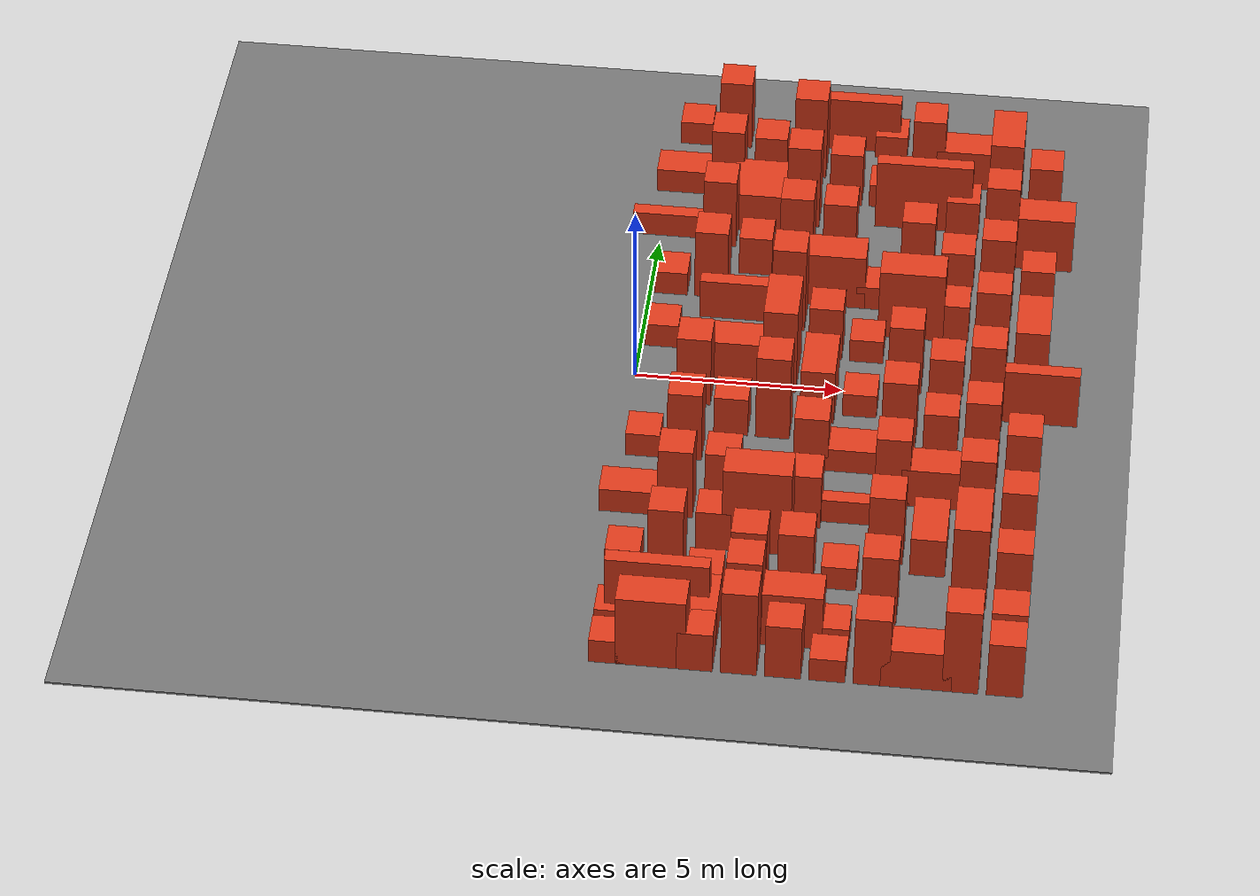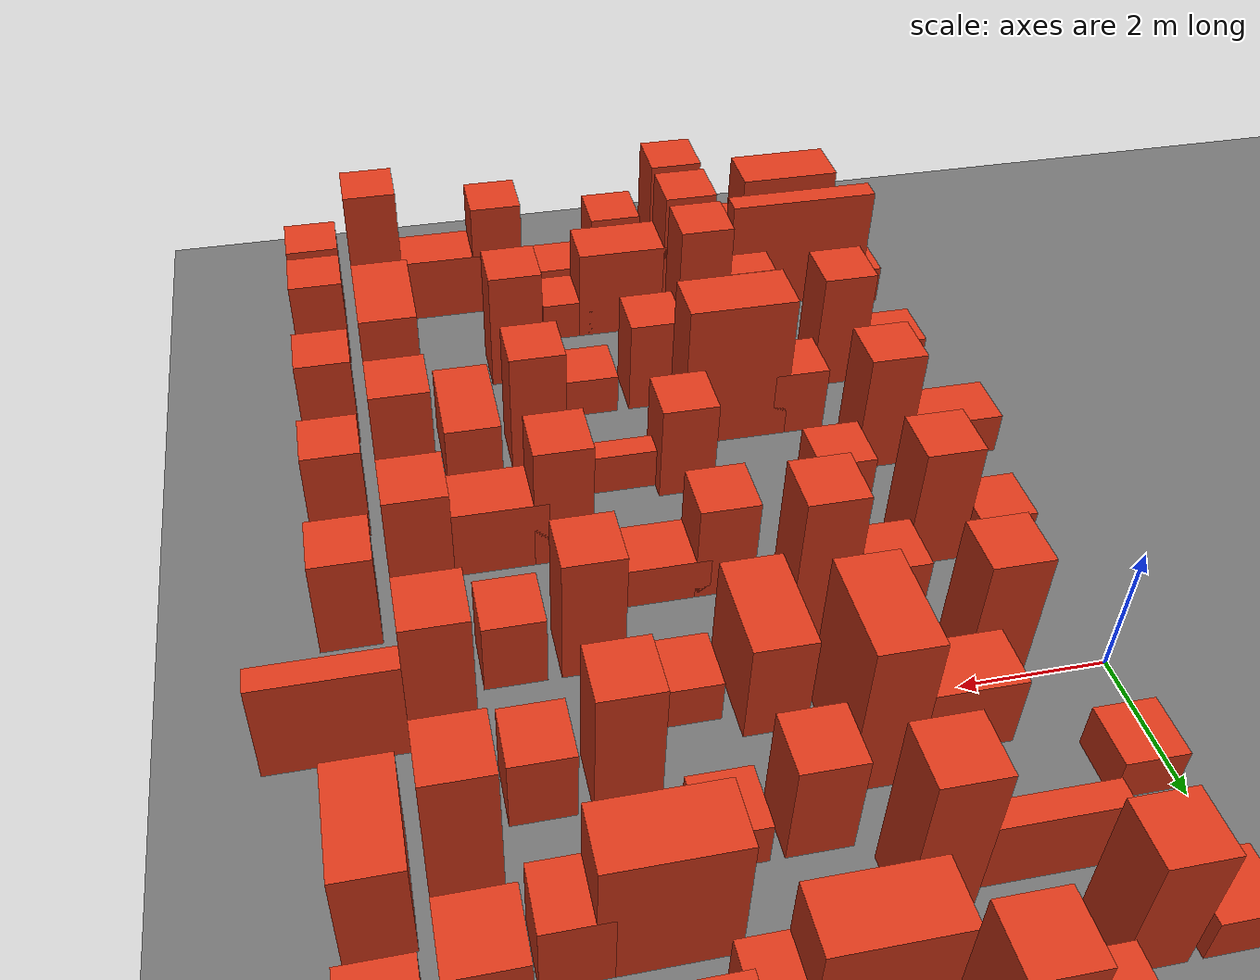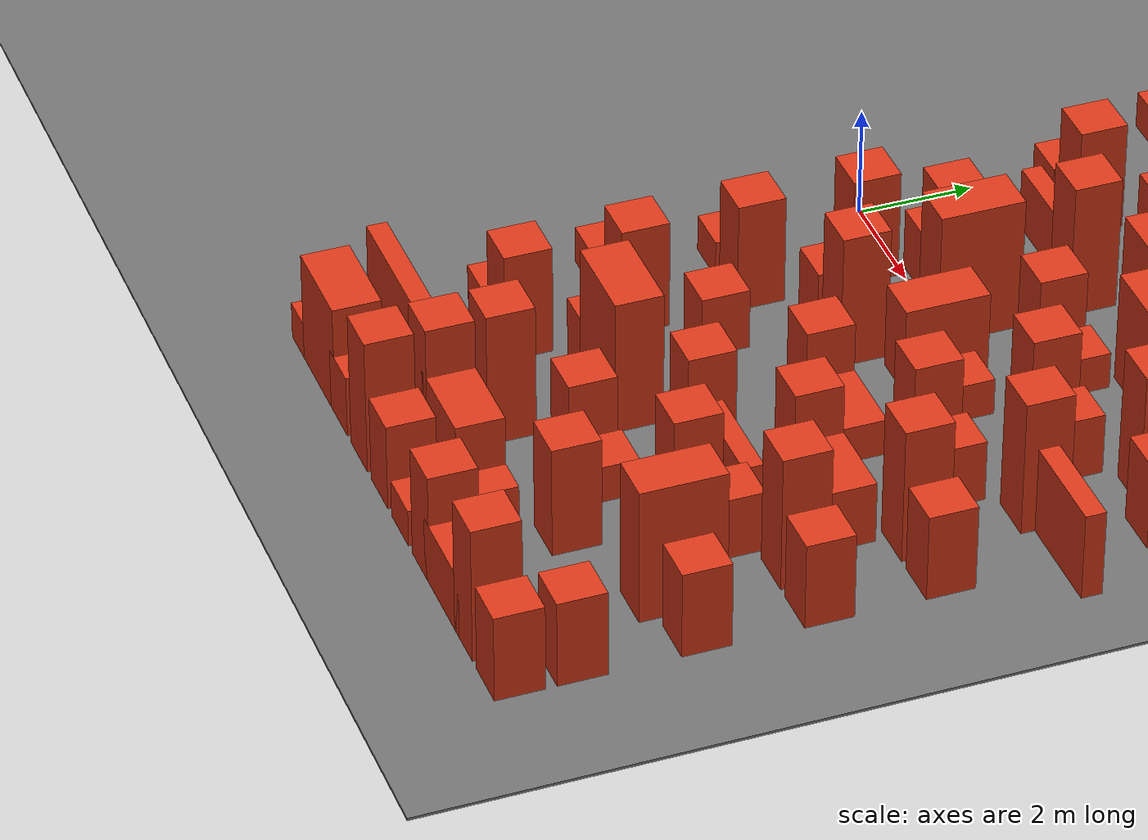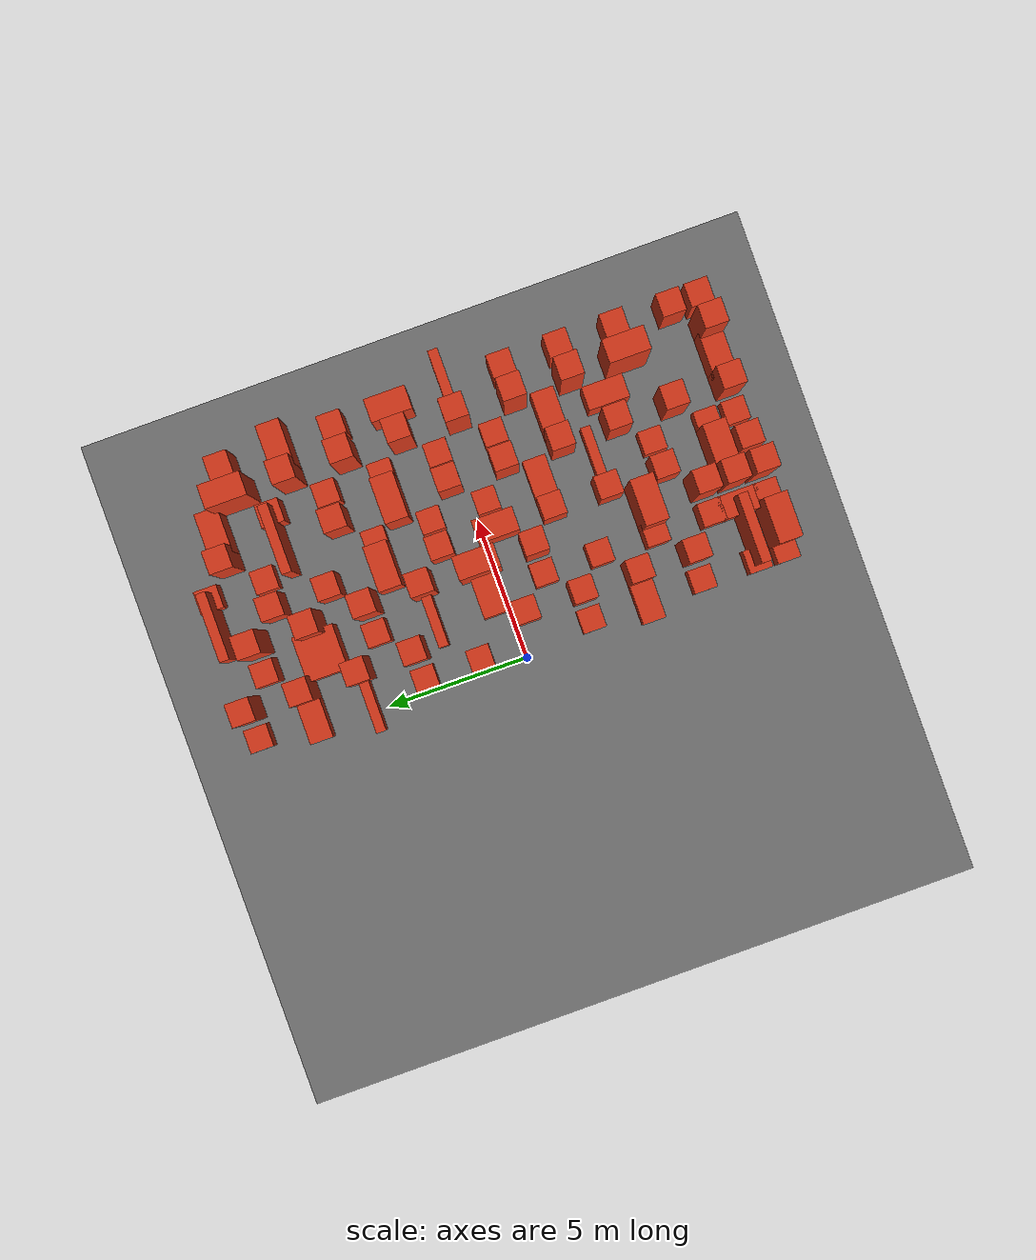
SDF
<sdf version="1.6">
 <world name="dense50_ground_footprint">
  <include><uri>model://sun</uri></include>
  <model name="ground_plane">
   <static>true</static>
   <link name="link">
    <collision name="collision"><geometry><box><size>24 24 0.05</size></box></geometry></collision>
    <visual name="visual">
     <geometry><box><size>24 24 0.05</size></box></geometry>
     <material><ambient>0.35 0.35 0.35 1</ambient><diffuse>0.45 0.45 0.45 1</diffuse></material>
    </visual>
   </link>
  </model>
  <model name="dense50_obstacle_004">
   <static>true</static>
   <pose>2.500 -9.500 0.575 0 0 0</pose>
   <link name="link">
    <collision name="collision"><geometry><box><size>0.820 0.820 1.150</size></box></geometry></collision>
    <visual name="visual">
     <geometry><box><size>0.820 0.820 1.150</size></box></geometry>
     <material><ambient>0.65 0.16 0.08 1</ambient><diffuse>0.85 0.22 0.10 1</diffuse></material>
    </visual>
   </link>
  </model>
  <model name="dense50_obstacle_005">
   <static>true</static>
   <pose>3.500 -9.500 1.250 0 0 0</pose>
   <link name="link">
    <collision name="collision"><geometry><box><size>0.820 0.820 2.500</size></box></geometry></collision>
    <visual name="visual">
     <geometry><box><size>0.820 0.820 2.500</size></box></geometry>
     <material><ambient>0.65 0.16 0.08 1</ambient><diffuse>0.85 0.22 0.10 1</diffuse></material>
    </visual>
   </link>
  </model>
  <model name="dense50_obstacle_006">
   <static>true</static>
   <pose>6.500 -9.500 1.025 0 0 0</pose>
   <link name="link">
    <collision name="collision"><geometry><box><size>0.820 0.820 2.050</size></box></geometry></collision>
    <visual name="visual">
     <geometry><box><size>0.820 0.820 2.050</size></box></geometry>
     <material><ambient>0.65 0.16 0.08 1</ambient><diffuse>0.85 0.22 0.10 1</diffuse></material>
    </visual>
   </link>
  </model>
  <model name="dense50_obstacle_007">
   <static>true</static>
   <pose>7.500 -9.500 0.575 0 0 0</pose>
   <link name="link">
    <collision name="collision"><geometry><box><size>1.600 0.820 1.150</size></box></geometry></collision>
    <visual name="visual">
     <geometry><box><size>1.600 0.820 1.150</size></box></geometry>
     <material><ambient>0.65 0.16 0.08 1</ambient><diffuse>0.85 0.22 0.10 1</diffuse></material>
    </visual>
   </link>
  </model>
  <model name="dense50_obstacle_012">
   <static>true</static>
   <pose>0.500 -8.500 0.350 0 0 0</pose>
   <link name="link">
    <collision name="collision"><geometry><box><size>0.820 0.820 0.700</size></box></geometry></collision>
    <visual name="visual">
     <geometry><box><size>0.820 0.820 0.700</size></box></geometry>
     <material><ambient>0.65 0.16 0.08 1</ambient><diffuse>0.85 0.22 0.10 1</diffuse></material>
    </visual>
   </link>
  </model>
  <model name="dense50_obstacle_013">
   <static>true</static>
   <pose>1.500 -8.500 1.025 0 0 0</pose>
   <link name="link">
    <collision name="collision"><geometry><box><size>2.400 0.350 2.050</size></box></geometry></collision>
    <visual name="visual">
     <geometry><box><size>2.400 0.350 2.050</size></box></geometry>
     <material><ambient>0.65 0.16 0.08 1</ambient><diffuse>0.85 0.22 0.10 1</diffuse></material>
    </visual>
   </link>
  </model>
  <model name="dense50_obstacle_014">
   <static>true</static>
   <pose>4.500 -8.500 0.800 0 0 0</pose>
   <link name="link">
    <collision name="collision"><geometry><box><size>1.600 0.820 1.600</size></box></geometry></collision>
    <visual name="visual">
     <geometry><box><size>1.600 0.820 1.600</size></box></geometry>
     <material><ambient>0.65 0.16 0.08 1</ambient><diffuse>0.85 0.22 0.10 1</diffuse></material>
    </visual>
   </link>
  </model>
  <model name="dense50_obstacle_015">
   <static>true</static>
   <pose>5.500 -8.500 0.350 0 0 0</pose>
   <link name="link">
    <collision name="collision"><geometry><box><size>0.820 0.820 0.700</size></box></geometry></collision>
    <visual name="visual">
     <geometry><box><size>0.820 0.820 0.700</size></box></geometry>
     <material><ambient>0.65 0.16 0.08 1</ambient><diffuse>0.85 0.22 0.10 1</diffuse></material>
    </visual>
   </link>
  </model>
  <model name="dense50_obstacle_016">
   <static>true</static>
   <pose>9.500 -8.500 0.800 0 0 0</pose>
   <link name="link">
    <collision name="collision"><geometry><box><size>0.820 0.820 1.600</size></box></geometry></collision>
    <visual name="visual">
     <geometry><box><size>0.820 0.820 1.600</size></box></geometry>
     <material><ambient>0.65 0.16 0.08 1</ambient><diffuse>0.85 0.22 0.10 1</diffuse></material>
    </visual>
   </link>
  </model>
  <model name="dense50_obstacle_023">
   <static>true</static>
   <pose>2.500 -7.500 0.575 0 0 0</pose>
   <link name="link">
    <collision name="collision"><geometry><box><size>0.820 0.820 1.150</size></box></geometry></collision>
    <visual name="visual">
     <geometry><box><size>0.820 0.820 1.150</size></box></geometry>
     <material><ambient>0.65 0.16 0.08 1</ambient><diffuse>0.85 0.22 0.10 1</diffuse></material>
    </visual>
   </link>
  </model>
  <model name="dense50_obstacle_024">
   <static>true</static>
   <pose>3.500 -7.500 1.250 0 0 0</pose>
   <link name="link">
    <collision name="collision"><geometry><box><size>0.820 0.820 2.500</size></box></geometry></collision>
    <visual name="visual">
     <geometry><box><size>0.820 0.820 2.500</size></box></geometry>
     <material><ambient>0.65 0.16 0.08 1</ambient><diffuse>0.85 0.22 0.10 1</diffuse></material>
    </visual>
   </link>
  </model>
  <model name="dense50_obstacle_025">
   <static>true</static>
   <pose>6.500 -7.500 1.025 0 0 0</pose>
   <link name="link">
    <collision name="collision"><geometry><box><size>0.820 0.820 2.050</size></box></geometry></collision>
    <visual name="visual">
     <geometry><box><size>0.820 0.820 2.050</size></box></geometry>
     <material><ambient>0.65 0.16 0.08 1</ambient><diffuse>0.85 0.22 0.10 1</diffuse></material>
    </visual>
   </link>
  </model>
  <model name="dense50_obstacle_029">
   <static>true</static>
   <pose>0.500 -6.500 0.350 0 0 0</pose>
   <link name="link">
    <collision name="collision"><geometry><box><size>0.820 0.820 0.700</size></box></geometry></collision>
    <visual name="visual">
     <geometry><box><size>0.820 0.820 0.700</size></box></geometry>
     <material><ambient>0.65 0.16 0.08 1</ambient><diffuse>0.85 0.22 0.10 1</diffuse></material>
    </visual>
   </link>
  </model>
  <model name="dense50_obstacle_030">
   <static>true</static>
   <pose>1.500 -6.500 1.025 0 0 0</pose>
   <link name="link">
    <collision name="collision"><geometry><box><size>0.820 0.820 2.050</size></box></geometry></collision>
    <visual name="visual">
     <geometry><box><size>0.820 0.820 2.050</size></box></geometry>
     <material><ambient>0.65 0.16 0.08 1</ambient><diffuse>0.85 0.22 0.10 1</diffuse></material>
    </visual>
   </link>
  </model>
  <model name="dense50_obstacle_031">
   <static>true</static>
   <pose>4.500 -6.500 0.800 0 0 0</pose>
   <link name="link">
    <collision name="collision"><geometry><box><size>0.820 0.820 1.600</size></box></geometry></collision>
    <visual name="visual">
     <geometry><box><size>0.820 0.820 1.600</size></box></geometry>
     <material><ambient>0.65 0.16 0.08 1</ambient><diffuse>0.85 0.22 0.10 1</diffuse></material>
    </visual>
   </link>
  </model>
  <model name="dense50_obstacle_032">
   <static>true</static>
   <pose>5.500 -6.500 0.350 0 0 0</pose>
   <link name="link">
    <collision name="collision"><geometry><box><size>0.820 0.820 0.700</size></box></geometry></collision>
    <visual name="visual">
     <geometry><box><size>0.820 0.820 0.700</size></box></geometry>
     <material><ambient>0.65 0.16 0.08 1</ambient><diffuse>0.85 0.22 0.10 1</diffuse></material>
    </visual>
   </link>
  </model>
  <model name="dense50_obstacle_033">
   <static>true</static>
   <pose>8.500 -6.500 1.250 0 0 0</pose>
   <link name="link">
    <collision name="collision"><geometry><box><size>0.820 1.450 2.500</size></box></geometry></collision>
    <visual name="visual">
     <geometry><box><size>0.820 1.450 2.500</size></box></geometry>
     <material><ambient>0.65 0.16 0.08 1</ambient><diffuse>0.85 0.22 0.10 1</diffuse></material>
    </visual>
   </link>
  </model>
  <model name="dense50_obstacle_034">
   <static>true</static>
   <pose>9.500 -6.500 0.800 0 0 0</pose>
   <link name="link">
    <collision name="collision"><geometry><box><size>0.820 0.820 1.600</size></box></geometry></collision>
    <visual name="visual">
     <geometry><box><size>0.820 0.820 1.600</size></box></geometry>
     <material><ambient>0.65 0.16 0.08 1</ambient><diffuse>0.85 0.22 0.10 1</diffuse></material>
    </visual>
   </link>
  </model>
  <model name="dense50_obstacle_041">
   <static>true</static>
   <pose>2.500 -5.500 0.575 0 0 0</pose>
   <link name="link">
    <collision name="collision"><geometry><box><size>0.820 0.820 1.150</size></box></geometry></collision>
    <visual name="visual">
     <geometry><box><size>0.820 0.820 1.150</size></box></geometry>
     <material><ambient>0.65 0.16 0.08 1</ambient><diffuse>0.85 0.22 0.10 1</diffuse></material>
    </visual>
   </link>
  </model>
  <model name="dense50_obstacle_042">
   <static>true</static>
   <pose>3.500 -5.500 1.250 0 0 0</pose>
   <link name="link">
    <collision name="collision"><geometry><box><size>1.600 0.820 2.500</size></box></geometry></collision>
    <visual name="visual">
     <geometry><box><size>1.600 0.820 2.500</size></box></geometry>
     <material><ambient>0.65 0.16 0.08 1</ambient><diffuse>0.85 0.22 0.10 1</diffuse></material>
    </visual>
   </link>
  </model>
  <model name="dense50_obstacle_043">
   <static>true</static>
   <pose>6.500 -5.500 1.025 0 0 0</pose>
   <link name="link">
    <collision name="collision"><geometry><box><size>0.820 0.820 2.050</size></box></geometry></collision>
    <visual name="visual">
     <geometry><box><size>0.820 0.820 2.050</size></box></geometry>
     <material><ambient>0.65 0.16 0.08 1</ambient><diffuse>0.85 0.22 0.10 1</diffuse></material>
    </visual>
   </link>
  </model>
  <model name="dense50_obstacle_044">
   <static>true</static>
   <pose>7.500 -5.500 0.575 0 0 0</pose>
   <link name="link">
    <collision name="collision"><geometry><box><size>0.820 1.450 1.150</size></box></geometry></collision>
    <visual name="visual">
     <geometry><box><size>0.820 1.450 1.150</size></box></geometry>
     <material><ambient>0.65 0.16 0.08 1</ambient><diffuse>0.85 0.22 0.10 1</diffuse></material>
    </visual>
   </link>
  </model>
  <model name="dense50_obstacle_049">
   <static>true</static>
   <pose>0.500 -4.500 0.350 0 0 0</pose>
   <link name="link">
    <collision name="collision"><geometry><box><size>1.600 0.820 0.700</size></box></geometry></collision>
    <visual name="visual">
     <geometry><box><size>1.600 0.820 0.700</size></box></geometry>
     <material><ambient>0.65 0.16 0.08 1</ambient><diffuse>0.85 0.22 0.10 1</diffuse></material>
    </visual>
   </link>
  </model>
  <model name="dense50_obstacle_050">
   <static>true</static>
   <pose>1.500 -4.500 1.025 0 0 0</pose>
   <link name="link">
    <collision name="collision"><geometry><box><size>0.820 0.820 2.050</size></box></geometry></collision>
    <visual name="visual">
     <geometry><box><size>0.820 0.820 2.050</size></box></geometry>
     <material><ambient>0.65 0.16 0.08 1</ambient><diffuse>0.85 0.22 0.10 1</diffuse></material>
    </visual>
   </link>
  </model>
  <model name="dense50_obstacle_051">
   <static>true</static>
   <pose>4.500 -4.500 0.800 0 0 0</pose>
   <link name="link">
    <collision name="collision"><geometry><box><size>0.820 0.820 1.600</size></box></geometry></collision>
    <visual name="visual">
     <geometry><box><size>0.820 0.820 1.600</size></box></geometry>
     <material><ambient>0.65 0.16 0.08 1</ambient><diffuse>0.85 0.22 0.10 1</diffuse></material>
    </visual>
   </link>
  </model>
  <model name="dense50_obstacle_052">
   <static>true</static>
   <pose>5.500 -4.500 0.350 0 0 0</pose>
   <link name="link">
    <collision name="collision"><geometry><box><size>2.400 0.350 0.700</size></box></geometry></collision>
    <visual name="visual">
     <geometry><box><size>2.400 0.350 0.700</size></box></geometry>
     <material><ambient>0.65 0.16 0.08 1</ambient><diffuse>0.85 0.22 0.10 1</diffuse></material>
    </visual>
   </link>
  </model>
  <model name="dense50_obstacle_053">
   <static>true</static>
   <pose>8.500 -4.500 1.250 0 0 0</pose>
   <link name="link">
    <collision name="collision"><geometry><box><size>0.820 0.820 2.500</size></box></geometry></collision>
    <visual name="visual">
     <geometry><box><size>0.820 0.820 2.500</size></box></geometry>
     <material><ambient>0.65 0.16 0.08 1</ambient><diffuse>0.85 0.22 0.10 1</diffuse></material>
    </visual>
   </link>
  </model>
  <model name="dense50_obstacle_054">
   <static>true</static>
   <pose>9.500 -4.500 0.800 0 0 0</pose>
   <link name="link">
    <collision name="collision"><geometry><box><size>0.820 0.820 1.600</size></box></geometry></collision>
    <visual name="visual">
     <geometry><box><size>0.820 0.820 1.600</size></box></geometry>
     <material><ambient>0.65 0.16 0.08 1</ambient><diffuse>0.85 0.22 0.10 1</diffuse></material>
    </visual>
   </link>
  </model>
  <model name="dense50_obstacle_061">
   <static>true</static>
   <pose>2.500 -3.500 0.575 0 0 0</pose>
   <link name="link">
    <collision name="collision"><geometry><box><size>0.820 0.820 1.150</size></box></geometry></collision>
    <visual name="visual">
     <geometry><box><size>0.820 0.820 1.150</size></box></geometry>
     <material><ambient>0.65 0.16 0.08 1</ambient><diffuse>0.85 0.22 0.10 1</diffuse></material>
    </visual>
   </link>
  </model>
  <model name="dense50_obstacle_062">
   <static>true</static>
   <pose>6.500 -3.500 1.025 0 0 0</pose>
   <link name="link">
    <collision name="collision"><geometry><box><size>0.820 0.820 2.050</size></box></geometry></collision>
    <visual name="visual">
     <geometry><box><size>0.820 0.820 2.050</size></box></geometry>
     <material><ambient>0.65 0.16 0.08 1</ambient><diffuse>0.85 0.22 0.10 1</diffuse></material>
    </visual>
   </link>
  </model>
  <model name="dense50_obstacle_063">
   <static>true</static>
   <pose>7.500 -3.500 0.575 0 0 0</pose>
   <link name="link">
    <collision name="collision"><geometry><box><size>1.600 0.820 1.150</size></box></geometry></collision>
    <visual name="visual">
     <geometry><box><size>1.600 0.820 1.150</size></box></geometry>
     <material><ambient>0.65 0.16 0.08 1</ambient><diffuse>0.85 0.22 0.10 1</diffuse></material>
    </visual>
   </link>
  </model>
  <model name="dense50_obstacle_067">
   <static>true</static>
   <pose>0.500 -2.500 0.350 0 0 0</pose>
   <link name="link">
    <collision name="collision"><geometry><box><size>0.820 0.820 0.700</size></box></geometry></collision>
    <visual name="visual">
     <geometry><box><size>0.820 0.820 0.700</size></box></geometry>
     <material><ambient>0.65 0.16 0.08 1</ambient><diffuse>0.85 0.22 0.10 1</diffuse></material>
    </visual>
   </link>
  </model>
  <model name="dense50_obstacle_068">
   <static>true</static>
   <pose>1.500 -2.500 1.025 0 0 0</pose>
   <link name="link">
    <collision name="collision"><geometry><box><size>0.820 0.820 2.050</size></box></geometry></collision>
    <visual name="visual">
     <geometry><box><size>0.820 0.820 2.050</size></box></geometry>
     <material><ambient>0.65 0.16 0.08 1</ambient><diffuse>0.85 0.22 0.10 1</diffuse></material>
    </visual>
   </link>
  </model>
  <model name="dense50_obstacle_069">
   <static>true</static>
   <pose>4.500 -2.500 0.800 0 0 0</pose>
   <link name="link">
    <collision name="collision"><geometry><box><size>0.820 0.820 1.600</size></box></geometry></collision>
    <visual name="visual">
     <geometry><box><size>0.820 0.820 1.600</size></box></geometry>
     <material><ambient>0.65 0.16 0.08 1</ambient><diffuse>0.85 0.22 0.10 1</diffuse></material>
    </visual>
   </link>
  </model>
  <model name="dense50_obstacle_070">
   <static>true</static>
   <pose>5.500 -2.500 0.350 0 0 0</pose>
   <link name="link">
    <collision name="collision"><geometry><box><size>1.600 0.820 0.700</size></box></geometry></collision>
    <visual name="visual">
     <geometry><box><size>1.600 0.820 0.700</size></box></geometry>
     <material><ambient>0.65 0.16 0.08 1</ambient><diffuse>0.85 0.22 0.10 1</diffuse></material>
    </visual>
   </link>
  </model>
  <model name="dense50_obstacle_071">
   <static>true</static>
   <pose>8.500 -2.500 1.250 0 0 0</pose>
   <link name="link">
    <collision name="collision"><geometry><box><size>0.820 0.820 2.500</size></box></geometry></collision>
    <visual name="visual">
     <geometry><box><size>0.820 0.820 2.500</size></box></geometry>
     <material><ambient>0.65 0.16 0.08 1</ambient><diffuse>0.85 0.22 0.10 1</diffuse></material>
    </visual>
   </link>
  </model>
  <model name="dense50_obstacle_072">
   <static>true</static>
   <pose>9.500 -2.500 0.800 0 0 0</pose>
   <link name="link">
    <collision name="collision"><geometry><box><size>0.820 0.820 1.600</size></box></geometry></collision>
    <visual name="visual">
     <geometry><box><size>0.820 0.820 1.600</size></box></geometry>
     <material><ambient>0.65 0.16 0.08 1</ambient><diffuse>0.85 0.22 0.10 1</diffuse></material>
    </visual>
   </link>
  </model>
  <model name="dense50_obstacle_079">
   <static>true</static>
   <pose>2.500 -1.500 0.575 0 0 0</pose>
   <link name="link">
    <collision name="collision"><geometry><box><size>0.820 0.820 1.150</size></box></geometry></collision>
    <visual name="visual">
     <geometry><box><size>0.820 0.820 1.150</size></box></geometry>
     <material><ambient>0.65 0.16 0.08 1</ambient><diffuse>0.85 0.22 0.10 1</diffuse></material>
    </visual>
   </link>
  </model>
  <model name="dense50_obstacle_080">
   <static>true</static>
   <pose>3.500 -1.500 1.250 0 0 0</pose>
   <link name="link">
    <collision name="collision"><geometry><box><size>0.820 0.820 2.500</size></box></geometry></collision>
    <visual name="visual">
     <geometry><box><size>0.820 0.820 2.500</size></box></geometry>
     <material><ambient>0.65 0.16 0.08 1</ambient><diffuse>0.85 0.22 0.10 1</diffuse></material>
    </visual>
   </link>
  </model>
  <model name="dense50_obstacle_081">
   <static>true</static>
   <pose>6.500 -1.500 1.025 0 0 0</pose>
   <link name="link">
    <collision name="collision"><geometry><box><size>0.820 0.820 2.050</size></box></geometry></collision>
    <visual name="visual">
     <geometry><box><size>0.820 0.820 2.050</size></box></geometry>
     <material><ambient>0.65 0.16 0.08 1</ambient><diffuse>0.85 0.22 0.10 1</diffuse></material>
    </visual>
   </link>
  </model>
  <model name="dense50_obstacle_082">
   <static>true</static>
   <pose>7.500 -1.500 0.575 0 0 0</pose>
   <link name="link">
    <collision name="collision"><geometry><box><size>0.820 0.820 1.150</size></box></geometry></collision>
    <visual name="visual">
     <geometry><box><size>0.820 0.820 1.150</size></box></geometry>
     <material><ambient>0.65 0.16 0.08 1</ambient><diffuse>0.85 0.22 0.10 1</diffuse></material>
    </visual>
   </link>
  </model>
  <model name="dense50_obstacle_087">
   <static>true</static>
   <pose>1.500 -0.500 1.025 0 0 0</pose>
   <link name="link">
    <collision name="collision"><geometry><box><size>0.820 0.820 2.050</size></box></geometry></collision>
    <visual name="visual">
     <geometry><box><size>0.820 0.820 2.050</size></box></geometry>
     <material><ambient>0.65 0.16 0.08 1</ambient><diffuse>0.85 0.22 0.10 1</diffuse></material>
    </visual>
   </link>
  </model>
  <model name="dense50_obstacle_088">
   <static>true</static>
   <pose>4.500 -0.500 0.800 0 0 0</pose>
   <link name="link">
    <collision name="collision"><geometry><box><size>0.820 1.450 1.600</size></box></geometry></collision>
    <visual name="visual">
     <geometry><box><size>0.820 1.450 1.600</size></box></geometry>
     <material><ambient>0.65 0.16 0.08 1</ambient><diffuse>0.85 0.22 0.10 1</diffuse></material>
    </visual>
   </link>
  </model>
  <model name="dense50_obstacle_089">
   <static>true</static>
   <pose>5.500 -0.500 0.350 0 0 0</pose>
   <link name="link">
    <collision name="collision"><geometry><box><size>0.820 0.820 0.700</size></box></geometry></collision>
    <visual name="visual">
     <geometry><box><size>0.820 0.820 0.700</size></box></geometry>
     <material><ambient>0.65 0.16 0.08 1</ambient><diffuse>0.85 0.22 0.10 1</diffuse></material>
    </visual>
   </link>
  </model>
  <model name="dense50_obstacle_090">
   <static>true</static>
   <pose>8.500 -0.500 1.250 0 0 0</pose>
   <link name="link">
    <collision name="collision"><geometry><box><size>0.820 0.820 2.500</size></box></geometry></collision>
    <visual name="visual">
     <geometry><box><size>0.820 0.820 2.500</size></box></geometry>
     <material><ambient>0.65 0.16 0.08 1</ambient><diffuse>0.85 0.22 0.10 1</diffuse></material>
    </visual>
   </link>
  </model>
  <model name="dense50_obstacle_091">
   <static>true</static>
   <pose>9.500 -0.500 0.800 0 0 0</pose>
   <link name="link">
    <collision name="collision"><geometry><box><size>2.400 0.350 1.600</size></box></geometry></collision>
    <visual name="visual">
     <geometry><box><size>2.400 0.350 1.600</size></box></geometry>
     <material><ambient>0.65 0.16 0.08 1</ambient><diffuse>0.85 0.22 0.10 1</diffuse></material>
    </visual>
   </link>
  </model>
  <model name="dense50_obstacle_098">
   <static>true</static>
   <pose>2.500 0.500 0.575 0 0 0</pose>
   <link name="link">
    <collision name="collision"><geometry><box><size>1.600 0.820 1.150</size></box></geometry></collision>
    <visual name="visual">
     <geometry><box><size>1.600 0.820 1.150</size></box></geometry>
     <material><ambient>0.65 0.16 0.08 1</ambient><diffuse>0.85 0.22 0.10 1</diffuse></material>
    </visual>
   </link>
  </model>
  <model name="dense50_obstacle_099">
   <static>true</static>
   <pose>3.500 0.500 1.250 0 0 0</pose>
   <link name="link">
    <collision name="collision"><geometry><box><size>0.820 1.450 2.500</size></box></geometry></collision>
    <visual name="visual">
     <geometry><box><size>0.820 1.450 2.500</size></box></geometry>
     <material><ambient>0.65 0.16 0.08 1</ambient><diffuse>0.85 0.22 0.10 1</diffuse></material>
    </visual>
   </link>
  </model>
  <model name="dense50_obstacle_100">
   <static>true</static>
   <pose>6.500 0.500 1.025 0 0 0</pose>
   <link name="link">
    <collision name="collision"><geometry><box><size>0.820 0.820 2.050</size></box></geometry></collision>
    <visual name="visual">
     <geometry><box><size>0.820 0.820 2.050</size></box></geometry>
     <material><ambient>0.65 0.16 0.08 1</ambient><diffuse>0.85 0.22 0.10 1</diffuse></material>
    </visual>
   </link>
  </model>
  <model name="dense50_obstacle_101">
   <static>true</static>
   <pose>7.500 0.500 0.575 0 0 0</pose>
   <link name="link">
    <collision name="collision"><geometry><box><size>0.820 0.820 1.150</size></box></geometry></collision>
    <visual name="visual">
     <geometry><box><size>0.820 0.820 1.150</size></box></geometry>
     <material><ambient>0.65 0.16 0.08 1</ambient><diffuse>0.85 0.22 0.10 1</diffuse></material>
    </visual>
   </link>
  </model>
  <model name="dense50_obstacle_106">
   <static>true</static>
   <pose>0.500 1.500 0.350 0 0 0</pose>
   <link name="link">
    <collision name="collision"><geometry><box><size>0.820 0.820 0.700</size></box></geometry></collision>
    <visual name="visual">
     <geometry><box><size>0.820 0.820 0.700</size></box></geometry>
     <material><ambient>0.65 0.16 0.08 1</ambient><diffuse>0.85 0.22 0.10 1</diffuse></material>
    </visual>
   </link>
  </model>
  <model name="dense50_obstacle_107">
   <static>true</static>
   <pose>4.500 1.500 0.800 0 0 0</pose>
   <link name="link">
    <collision name="collision"><geometry><box><size>0.820 0.820 1.600</size></box></geometry></collision>
    <visual name="visual">
     <geometry><box><size>0.820 0.820 1.600</size></box></geometry>
     <material><ambient>0.65 0.16 0.08 1</ambient><diffuse>0.85 0.22 0.10 1</diffuse></material>
    </visual>
   </link>
  </model>
  <model name="dense50_obstacle_108">
   <static>true</static>
   <pose>5.500 1.500 0.350 0 0 0</pose>
   <link name="link">
    <collision name="collision"><geometry><box><size>0.820 0.820 0.700</size></box></geometry></collision>
    <visual name="visual">
     <geometry><box><size>0.820 0.820 0.700</size></box></geometry>
     <material><ambient>0.65 0.16 0.08 1</ambient><diffuse>0.85 0.22 0.10 1</diffuse></material>
    </visual>
   </link>
  </model>
  <model name="dense50_obstacle_109">
   <static>true</static>
   <pose>8.500 1.500 1.250 0 0 0</pose>
   <link name="link">
    <collision name="collision"><geometry><box><size>0.820 0.820 2.500</size></box></geometry></collision>
    <visual name="visual">
     <geometry><box><size>0.820 0.820 2.500</size></box></geometry>
     <material><ambient>0.65 0.16 0.08 1</ambient><diffuse>0.85 0.22 0.10 1</diffuse></material>
    </visual>
   </link>
  </model>
  <model name="dense50_obstacle_110">
   <static>true</static>
   <pose>9.500 1.500 0.800 0 0 0</pose>
   <link name="link">
    <collision name="collision"><geometry><box><size>0.820 1.450 1.600</size></box></geometry></collision>
    <visual name="visual">
     <geometry><box><size>0.820 1.450 1.600</size></box></geometry>
     <material><ambient>0.65 0.16 0.08 1</ambient><diffuse>0.85 0.22 0.10 1</diffuse></material>
    </visual>
   </link>
  </model>
  <model name="dense50_obstacle_117">
   <static>true</static>
   <pose>2.500 2.500 0.575 0 0 0</pose>
   <link name="link">
    <collision name="collision"><geometry><box><size>2.400 0.350 1.150</size></box></geometry></collision>
    <visual name="visual">
     <geometry><box><size>2.400 0.350 1.150</size></box></geometry>
     <material><ambient>0.65 0.16 0.08 1</ambient><diffuse>0.85 0.22 0.10 1</diffuse></material>
    </visual>
   </link>
  </model>
  <model name="dense50_obstacle_118">
   <static>true</static>
   <pose>3.500 2.500 1.250 0 0 0</pose>
   <link name="link">
    <collision name="collision"><geometry><box><size>0.820 0.820 2.500</size></box></geometry></collision>
    <visual name="visual">
     <geometry><box><size>0.820 0.820 2.500</size></box></geometry>
     <material><ambient>0.65 0.16 0.08 1</ambient><diffuse>0.85 0.22 0.10 1</diffuse></material>
    </visual>
   </link>
  </model>
  <model name="dense50_obstacle_119">
   <static>true</static>
   <pose>6.500 2.500 1.025 0 0 0</pose>
   <link name="link">
    <collision name="collision"><geometry><box><size>1.600 0.820 2.050</size></box></geometry></collision>
    <visual name="visual">
     <geometry><box><size>1.600 0.820 2.050</size></box></geometry>
     <material><ambient>0.65 0.16 0.08 1</ambient><diffuse>0.85 0.22 0.10 1</diffuse></material>
    </visual>
   </link>
  </model>
  <model name="dense50_obstacle_120">
   <static>true</static>
   <pose>7.500 2.500 0.575 0 0 0</pose>
   <link name="link">
    <collision name="collision"><geometry><box><size>0.820 0.820 1.150</size></box></geometry></collision>
    <visual name="visual">
     <geometry><box><size>0.820 0.820 1.150</size></box></geometry>
     <material><ambient>0.65 0.16 0.08 1</ambient><diffuse>0.85 0.22 0.10 1</diffuse></material>
    </visual>
   </link>
  </model>
  <model name="dense50_obstacle_124">
   <static>true</static>
   <pose>0.500 3.500 0.350 0 0 0</pose>
   <link name="link">
    <collision name="collision"><geometry><box><size>0.820 0.820 0.700</size></box></geometry></collision>
    <visual name="visual">
     <geometry><box><size>0.820 0.820 0.700</size></box></geometry>
     <material><ambient>0.65 0.16 0.08 1</ambient><diffuse>0.85 0.22 0.10 1</diffuse></material>
    </visual>
   </link>
  </model>
  <model name="dense50_obstacle_125">
   <static>true</static>
   <pose>1.500 3.500 1.025 0 0 0</pose>
   <link name="link">
    <collision name="collision"><geometry><box><size>0.820 0.820 2.050</size></box></geometry></collision>
    <visual name="visual">
     <geometry><box><size>0.820 0.820 2.050</size></box></geometry>
     <material><ambient>0.65 0.16 0.08 1</ambient><diffuse>0.85 0.22 0.10 1</diffuse></material>
    </visual>
   </link>
  </model>
  <model name="dense50_obstacle_126">
   <static>true</static>
   <pose>4.500 3.500 0.800 0 0 0</pose>
   <link name="link">
    <collision name="collision"><geometry><box><size>1.600 0.820 1.600</size></box></geometry></collision>
    <visual name="visual">
     <geometry><box><size>1.600 0.820 1.600</size></box></geometry>
     <material><ambient>0.65 0.16 0.08 1</ambient><diffuse>0.85 0.22 0.10 1</diffuse></material>
    </visual>
   </link>
  </model>
  <model name="dense50_obstacle_127">
   <static>true</static>
   <pose>5.500 3.500 0.350 0 0 0</pose>
   <link name="link">
    <collision name="collision"><geometry><box><size>0.820 0.820 0.700</size></box></geometry></collision>
    <visual name="visual">
     <geometry><box><size>0.820 0.820 0.700</size></box></geometry>
     <material><ambient>0.65 0.16 0.08 1</ambient><diffuse>0.85 0.22 0.10 1</diffuse></material>
    </visual>
   </link>
  </model>
  <model name="dense50_obstacle_128">
   <static>true</static>
   <pose>8.500 3.500 1.250 0 0 0</pose>
   <link name="link">
    <collision name="collision"><geometry><box><size>0.820 0.820 2.500</size></box></geometry></collision>
    <visual name="visual">
     <geometry><box><size>0.820 0.820 2.500</size></box></geometry>
     <material><ambient>0.65 0.16 0.08 1</ambient><diffuse>0.85 0.22 0.10 1</diffuse></material>
    </visual>
   </link>
  </model>
  <model name="dense50_obstacle_129">
   <static>true</static>
   <pose>9.500 3.500 0.800 0 0 0</pose>
   <link name="link">
    <collision name="collision"><geometry><box><size>0.820 0.820 1.600</size></box></geometry></collision>
    <visual name="visual">
     <geometry><box><size>0.820 0.820 1.600</size></box></geometry>
     <material><ambient>0.65 0.16 0.08 1</ambient><diffuse>0.85 0.22 0.10 1</diffuse></material>
    </visual>
   </link>
  </model>
  <model name="dense50_obstacle_135">
   <static>true</static>
   <pose>2.500 4.500 0.575 0 0 0</pose>
   <link name="link">
    <collision name="collision"><geometry><box><size>0.820 0.820 1.150</size></box></geometry></collision>
    <visual name="visual">
     <geometry><box><size>0.820 0.820 1.150</size></box></geometry>
     <material><ambient>0.65 0.16 0.08 1</ambient><diffuse>0.85 0.22 0.10 1</diffuse></material>
    </visual>
   </link>
  </model>
  <model name="dense50_obstacle_136">
   <static>true</static>
   <pose>3.500 4.500 1.250 0 0 0</pose>
   <link name="link">
    <collision name="collision"><geometry><box><size>0.820 0.820 2.500</size></box></geometry></collision>
    <visual name="visual">
     <geometry><box><size>0.820 0.820 2.500</size></box></geometry>
     <material><ambient>0.65 0.16 0.08 1</ambient><diffuse>0.85 0.22 0.10 1</diffuse></material>
    </visual>
   </link>
  </model>
  <model name="dense50_obstacle_137">
   <static>true</static>
   <pose>6.500 4.500 1.025 0 0 0</pose>
   <link name="link">
    <collision name="collision"><geometry><box><size>0.820 0.820 2.050</size></box></geometry></collision>
    <visual name="visual">
     <geometry><box><size>0.820 0.820 2.050</size></box></geometry>
     <material><ambient>0.65 0.16 0.08 1</ambient><diffuse>0.85 0.22 0.10 1</diffuse></material>
    </visual>
   </link>
  </model>
  <model name="dense50_obstacle_138">
   <static>true</static>
   <pose>7.500 4.500 0.575 0 0 0</pose>
   <link name="link">
    <collision name="collision"><geometry><box><size>0.820 0.820 1.150</size></box></geometry></collision>
    <visual name="visual">
     <geometry><box><size>0.820 0.820 1.150</size></box></geometry>
     <material><ambient>0.65 0.16 0.08 1</ambient><diffuse>0.85 0.22 0.10 1</diffuse></material>
    </visual>
   </link>
  </model>
  <model name="dense50_obstacle_143">
   <static>true</static>
   <pose>0.500 5.500 0.350 0 0 0</pose>
   <link name="link">
    <collision name="collision"><geometry><box><size>2.400 0.350 0.700</size></box></geometry></collision>
    <visual name="visual">
     <geometry><box><size>2.400 0.350 0.700</size></box></geometry>
     <material><ambient>0.65 0.16 0.08 1</ambient><diffuse>0.85 0.22 0.10 1</diffuse></material>
    </visual>
   </link>
  </model>
  <model name="dense50_obstacle_144">
   <static>true</static>
   <pose>1.500 5.500 1.025 0 0 0</pose>
   <link name="link">
    <collision name="collision"><geometry><box><size>0.820 0.820 2.050</size></box></geometry></collision>
    <visual name="visual">
     <geometry><box><size>0.820 0.820 2.050</size></box></geometry>
     <material><ambient>0.65 0.16 0.08 1</ambient><diffuse>0.85 0.22 0.10 1</diffuse></material>
    </visual>
   </link>
  </model>
  <model name="dense50_obstacle_145">
   <static>true</static>
   <pose>4.500 5.500 0.800 0 0 0</pose>
   <link name="link">
    <collision name="collision"><geometry><box><size>0.820 0.820 1.600</size></box></geometry></collision>
    <visual name="visual">
     <geometry><box><size>0.820 0.820 1.600</size></box></geometry>
     <material><ambient>0.65 0.16 0.08 1</ambient><diffuse>0.85 0.22 0.10 1</diffuse></material>
    </visual>
   </link>
  </model>
  <model name="dense50_obstacle_146">
   <static>true</static>
   <pose>8.500 5.500 1.250 0 0 0</pose>
   <link name="link">
    <collision name="collision"><geometry><box><size>0.820 0.820 2.500</size></box></geometry></collision>
    <visual name="visual">
     <geometry><box><size>0.820 0.820 2.500</size></box></geometry>
     <material><ambient>0.65 0.16 0.08 1</ambient><diffuse>0.85 0.22 0.10 1</diffuse></material>
    </visual>
   </link>
  </model>
  <model name="dense50_obstacle_147">
   <static>true</static>
   <pose>9.500 5.500 0.800 0 0 0</pose>
   <link name="link">
    <collision name="collision"><geometry><box><size>1.600 0.820 1.600</size></box></geometry></collision>
    <visual name="visual">
     <geometry><box><size>1.600 0.820 1.600</size></box></geometry>
     <material><ambient>0.65 0.16 0.08 1</ambient><diffuse>0.85 0.22 0.10 1</diffuse></material>
    </visual>
   </link>
  </model>
  <model name="dense50_obstacle_154">
   <static>true</static>
   <pose>2.500 6.500 0.575 0 0 0</pose>
   <link name="link">
    <collision name="collision"><geometry><box><size>1.600 1.450 1.150</size></box></geometry></collision>
    <visual name="visual">
     <geometry><box><size>1.600 1.450 1.150</size></box></geometry>
     <material><ambient>0.65 0.16 0.08 1</ambient><diffuse>0.85 0.22 0.10 1</diffuse></material>
    </visual>
   </link>
  </model>
  <model name="dense50_obstacle_155">
   <static>true</static>
   <pose>3.500 6.500 1.250 0 0 0</pose>
   <link name="link">
    <collision name="collision"><geometry><box><size>0.820 0.820 2.500</size></box></geometry></collision>
    <visual name="visual">
     <geometry><box><size>0.820 0.820 2.500</size></box></geometry>
     <material><ambient>0.65 0.16 0.08 1</ambient><diffuse>0.85 0.22 0.10 1</diffuse></material>
    </visual>
   </link>
  </model>
  <model name="dense50_obstacle_156">
   <static>true</static>
   <pose>6.500 6.500 1.025 0 0 0</pose>
   <link name="link">
    <collision name="collision"><geometry><box><size>2.400 0.350 2.050</size></box></geometry></collision>
    <visual name="visual">
     <geometry><box><size>2.400 0.350 2.050</size></box></geometry>
     <material><ambient>0.65 0.16 0.08 1</ambient><diffuse>0.85 0.22 0.10 1</diffuse></material>
    </visual>
   </link>
  </model>
  <model name="dense50_obstacle_157">
   <static>true</static>
   <pose>7.500 6.500 0.575 0 0 0</pose>
   <link name="link">
    <collision name="collision"><geometry><box><size>0.820 0.820 1.150</size></box></geometry></collision>
    <visual name="visual">
     <geometry><box><size>0.820 0.820 1.150</size></box></geometry>
     <material><ambient>0.65 0.16 0.08 1</ambient><diffuse>0.85 0.22 0.10 1</diffuse></material>
    </visual>
   </link>
  </model>
  <model name="dense50_obstacle_161">
   <static>true</static>
   <pose>0.500 7.500 0.350 0 0 0</pose>
   <link name="link">
    <collision name="collision"><geometry><box><size>1.600 0.820 0.700</size></box></geometry></collision>
    <visual name="visual">
     <geometry><box><size>1.600 0.820 0.700</size></box></geometry>
     <material><ambient>0.65 0.16 0.08 1</ambient><diffuse>0.85 0.22 0.10 1</diffuse></material>
    </visual>
   </link>
  </model>
  <model name="dense50_obstacle_162">
   <static>true</static>
   <pose>1.500 7.500 1.025 0 0 0</pose>
   <link name="link">
    <collision name="collision"><geometry><box><size>0.820 0.820 2.050</size></box></geometry></collision>
    <visual name="visual">
     <geometry><box><size>0.820 0.820 2.050</size></box></geometry>
     <material><ambient>0.65 0.16 0.08 1</ambient><diffuse>0.85 0.22 0.10 1</diffuse></material>
    </visual>
   </link>
  </model>
  <model name="dense50_obstacle_163">
   <static>true</static>
   <pose>4.500 7.500 0.800 0 0 0</pose>
   <link name="link">
    <collision name="collision"><geometry><box><size>0.820 0.820 1.600</size></box></geometry></collision>
    <visual name="visual">
     <geometry><box><size>0.820 0.820 1.600</size></box></geometry>
     <material><ambient>0.65 0.16 0.08 1</ambient><diffuse>0.85 0.22 0.10 1</diffuse></material>
    </visual>
   </link>
  </model>
  <model name="dense50_obstacle_164">
   <static>true</static>
   <pose>5.500 7.500 0.350 0 0 0</pose>
   <link name="link">
    <collision name="collision"><geometry><box><size>0.820 0.820 0.700</size></box></geometry></collision>
    <visual name="visual">
     <geometry><box><size>0.820 0.820 0.700</size></box></geometry>
     <material><ambient>0.65 0.16 0.08 1</ambient><diffuse>0.85 0.22 0.10 1</diffuse></material>
    </visual>
   </link>
  </model>
  <model name="dense50_obstacle_165">
   <static>true</static>
   <pose>8.500 7.500 1.250 0 0 0</pose>
   <link name="link">
    <collision name="collision"><geometry><box><size>0.820 1.450 2.500</size></box></geometry></collision>
    <visual name="visual">
     <geometry><box><size>0.820 1.450 2.500</size></box></geometry>
     <material><ambient>0.65 0.16 0.08 1</ambient><diffuse>0.85 0.22 0.10 1</diffuse></material>
    </visual>
   </link>
  </model>
  <model name="dense50_obstacle_166">
   <static>true</static>
   <pose>9.500 7.500 0.800 0 0 0</pose>
   <link name="link">
    <collision name="collision"><geometry><box><size>0.820 0.820 1.600</size></box></geometry></collision>
    <visual name="visual">
     <geometry><box><size>0.820 0.820 1.600</size></box></geometry>
     <material><ambient>0.65 0.16 0.08 1</ambient><diffuse>0.85 0.22 0.10 1</diffuse></material>
    </visual>
   </link>
  </model>
  <model name="dense50_obstacle_172">
   <static>true</static>
   <pose>2.500 8.500 0.575 0 0 0</pose>
   <link name="link">
    <collision name="collision"><geometry><box><size>0.820 0.820 1.150</size></box></geometry></collision>
    <visual name="visual">
     <geometry><box><size>0.820 0.820 1.150</size></box></geometry>
     <material><ambient>0.65 0.16 0.08 1</ambient><diffuse>0.85 0.22 0.10 1</diffuse></material>
    </visual>
   </link>
  </model>
  <model name="dense50_obstacle_173">
   <static>true</static>
   <pose>3.500 8.500 1.250 0 0 0</pose>
   <link name="link">
    <collision name="collision"><geometry><box><size>0.820 0.820 2.500</size></box></geometry></collision>
    <visual name="visual">
     <geometry><box><size>0.820 0.820 2.500</size></box></geometry>
     <material><ambient>0.65 0.16 0.08 1</ambient><diffuse>0.85 0.22 0.10 1</diffuse></material>
    </visual>
   </link>
  </model>
  <model name="dense50_obstacle_174">
   <static>true</static>
   <pose>6.500 8.500 1.025 0 0 0</pose>
   <link name="link">
    <collision name="collision"><geometry><box><size>0.820 0.820 2.050</size></box></geometry></collision>
    <visual name="visual">
     <geometry><box><size>0.820 0.820 2.050</size></box></geometry>
     <material><ambient>0.65 0.16 0.08 1</ambient><diffuse>0.85 0.22 0.10 1</diffuse></material>
    </visual>
   </link>
  </model>
  <model name="dense50_obstacle_175">
   <static>true</static>
   <pose>7.500 8.500 0.575 0 0 0</pose>
   <link name="link">
    <collision name="collision"><geometry><box><size>1.600 0.820 1.150</size></box></geometry></collision>
    <visual name="visual">
     <geometry><box><size>1.600 0.820 1.150</size></box></geometry>
     <material><ambient>0.65 0.16 0.08 1</ambient><diffuse>0.85 0.22 0.10 1</diffuse></material>
    </visual>
   </link>
  </model>
  <model name="dense50_obstacle_180">
   <static>true</static>
   <pose>0.500 9.500 0.350 0 0 0</pose>
   <link name="link">
    <collision name="collision"><geometry><box><size>0.820 0.820 0.700</size></box></geometry></collision>
    <visual name="visual">
     <geometry><box><size>0.820 0.820 0.700</size></box></geometry>
     <material><ambient>0.65 0.16 0.08 1</ambient><diffuse>0.85 0.22 0.10 1</diffuse></material>
    </visual>
   </link>
  </model>
  <model name="dense50_obstacle_181">
   <static>true</static>
   <pose>1.500 9.500 1.025 0 0 0</pose>
   <link name="link">
    <collision name="collision"><geometry><box><size>0.820 0.820 2.050</size></box></geometry></collision>
    <visual name="visual">
     <geometry><box><size>0.820 0.820 2.050</size></box></geometry>
     <material><ambient>0.65 0.16 0.08 1</ambient><diffuse>0.85 0.22 0.10 1</diffuse></material>
    </visual>
   </link>
  </model>
  <model name="dense50_obstacle_182">
   <static>true</static>
   <pose>4.500 9.500 0.800 0 0 0</pose>
   <link name="link">
    <collision name="collision"><geometry><box><size>2.400 0.350 1.600</size></box></geometry></collision>
    <visual name="visual">
     <geometry><box><size>2.400 0.350 1.600</size></box></geometry>
     <material><ambient>0.65 0.16 0.08 1</ambient><diffuse>0.85 0.22 0.10 1</diffuse></material>
    </visual>
   </link>
  </model>
  <model name="dense50_obstacle_183">
   <static>true</static>
   <pose>5.500 9.500 0.350 0 0 0</pose>
   <link name="link">
    <collision name="collision"><geometry><box><size>0.820 0.820 0.700</size></box></geometry></collision>
    <visual name="visual">
     <geometry><box><size>0.820 0.820 0.700</size></box></geometry>
     <material><ambient>0.65 0.16 0.08 1</ambient><diffuse>0.85 0.22 0.10 1</diffuse></material>
    </visual>
   </link>
  </model>
  <model name="dense50_obstacle_188">
   <static>true</static>
   <pose>0.500 -9.500 0.350 0 0 0</pose>
   <link name="link">
    <collision name="collision"><geometry><box><size>0.820 0.820 0.700</size></box></geometry></collision>
    <visual name="visual">
     <geometry><box><size>0.820 0.820 0.700</size></box></geometry>
     <material><ambient>0.65 0.16 0.08 1</ambient><diffuse>0.85 0.22 0.10 1</diffuse></material>
    </visual>
   </link>
  </model>
  <model name="dense50_obstacle_189">
   <static>true</static>
   <pose>1.500 -9.500 1.025 0 0 0</pose>
   <link name="link">
    <collision name="collision"><geometry><box><size>1.600 0.820 2.050</size></box></geometry></collision>
    <visual name="visual">
     <geometry><box><size>1.600 0.820 2.050</size></box></geometry>
     <material><ambient>0.65 0.16 0.08 1</ambient><diffuse>0.85 0.22 0.10 1</diffuse></material>
    </visual>
   </link>
  </model>
  <model name="dense50_obstacle_190">
   <static>true</static>
   <pose>4.500 -9.500 0.800 0 0 0</pose>
   <link name="link">
    <collision name="collision"><geometry><box><size>0.820 0.820 1.600</size></box></geometry></collision>
    <visual name="visual">
     <geometry><box><size>0.820 0.820 1.600</size></box></geometry>
     <material><ambient>0.65 0.16 0.08 1</ambient><diffuse>0.85 0.22 0.10 1</diffuse></material>
    </visual>
   </link>
  </model>
  <model name="dense50_obstacle_191">
   <static>true</static>
   <pose>5.500 -9.500 0.350 0 0 0</pose>
   <link name="link">
    <collision name="collision"><geometry><box><size>0.820 0.820 0.700</size></box></geometry></collision>
    <visual name="visual">
     <geometry><box><size>0.820 0.820 0.700</size></box></geometry>
     <material><ambient>0.65 0.16 0.08 1</ambient><diffuse>0.85 0.22 0.10 1</diffuse></material>
    </visual>
   </link>
  </model>
  <model name="dense50_obstacle_192">
   <static>true</static>
   <pose>8.500 -9.500 1.250 0 0 0</pose>
   <link name="link">
    <collision name="collision"><geometry><box><size>0.820 0.820 2.500</size></box></geometry></collision>
    <visual name="visual">
     <geometry><box><size>0.820 0.820 2.500</size></box></geometry>
     <material><ambient>0.65 0.16 0.08 1</ambient><diffuse>0.85 0.22 0.10 1</diffuse></material>
    </visual>
   </link>
  </model>
  <model name="dense50_obstacle_193">
   <static>true</static>
   <pose>9.500 -9.500 0.800 0 0 0</pose>
   <link name="link">
    <collision name="collision"><geometry><box><size>0.820 0.820 1.600</size></box></geometry></collision>
    <visual name="visual">
     <geometry><box><size>0.820 0.820 1.600</size></box></geometry>
     <material><ambient>0.65 0.16 0.08 1</ambient><diffuse>0.85 0.22 0.10 1</diffuse></material>
    </visual>
   </link>
  </model>
  <model name="dense50_obstacle_198">
   <static>true</static>
   <pose>2.500 -8.500 0.575 0 0 0</pose>
   <link name="link">
    <collision name="collision"><geometry><box><size>0.820 1.450 1.150</size></box></geometry></collision>
    <visual name="visual">
     <geometry><box><size>0.820 1.450 1.150</size></box></geometry>
     <material><ambient>0.65 0.16 0.08 1</ambient><diffuse>0.85 0.22 0.10 1</diffuse></material>
    </visual>
   </link>
  </model>
  <model name="dense50_obstacle_199">
   <static>true</static>
   <pose>3.500 -8.500 1.250 0 0 0</pose>
   <link name="link">
    <collision name="collision"><geometry><box><size>0.820 0.820 2.500</size></box></geometry></collision>
    <visual name="visual">
     <geometry><box><size>0.820 0.820 2.500</size></box></geometry>
     <material><ambient>0.65 0.16 0.08 1</ambient><diffuse>0.85 0.22 0.10 1</diffuse></material>
    </visual>
   </link>
  </model>
 </world>
</sdf>
